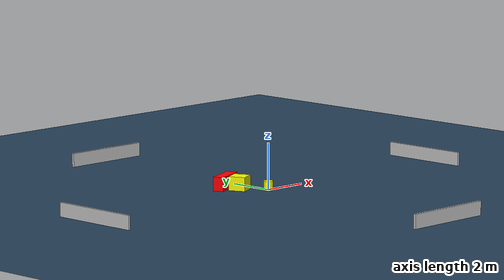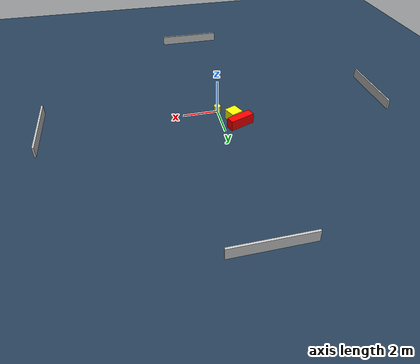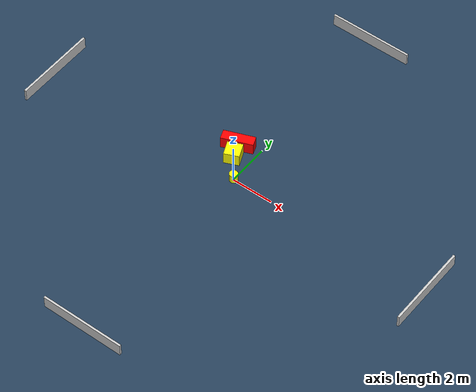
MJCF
<?xml version="1.0" ?>
<mujoco model="generated_environment">
  <option timestep="0.01" integrator="RK4" cone="elliptic"/>
  <default>
    <geom density="1"/>
  </default>
  <asset>
    <texture builtin="gradient" height="3072" name="skybox" rgb1="0.3 0.5 0.7" rgb2="0 0 0" type="skybox" width="512"/>
    <texture builtin="checker" height="300" name="groundplane" rgb1="0.2 0.3 0.4" rgb2="0.1 0.2 0.3" type="2d" width="300"/>
    <material name="groundplane" reflectance="0.2" texrepeat="5 5" texture="groundplane"/>
  </asset>
  <worldbody>
    <light dir="0 0 -1" directional="true" pos="0 0 1.5"/>
    <geom condim="3" friction="0.5 0.005 0.001" material="groundplane" name="floor" pos="0 0 0" size="0 0 0.05" type="plane"/>
    <body name="walls">
      <geom name="wall_1" condim="4" pos="-10.0 0.0 0.3" rgba="0.800000011920929 0.800000011920929 0.800000011920929 1.0" size="0.05 2.0 0.3" type="box"/>
      <geom name="wall_2" condim="4" pos="10.0 0.0 0.3" rgba="0.800000011920929 0.800000011920929 0.800000011920929 1.0" size="0.05 2.0 0.3" type="box"/>
      <geom name="wall_3" condim="4" pos="0.0 -10.0 0.3" rgba="0.800000011920929 0.800000011920929 0.800000011920929 1.0" size="2.0 0.05 0.3" type="box"/>
      <geom name="wall_4" condim="4" pos="0.0 10.0 0.3" rgba="0.800000011920929 0.800000011920929 0.800000011920929 1.0" size="2.0 0.05 0.3" type="box"/>
    </body>
    <body name="robot">
      <joint name="joint_x" type="slide" pos="0 0 0" axis="1 0 0"/>
      <joint name="joint_y" type="slide" pos="0 0 0" axis="0 1 0"/>
      <geom name="robot" type="cylinder" pos="0.0 0.0 0.2" size="0.2 0.2 0.0" mass="5.0" friction="1.0 0.005 0.0001" condim="4" rgba="1.0 1.0 0.0 1.0"/>
    </body>
    <body name="obstacle_1_movable">
      <geom name="obstacle_1_movable" condim="4" pos="-0.7534362622542996 0.9501934953996207 0.3" euler="0 0 113.59186323019372" friction="0.0 0.005 0.001" rgba="1.0 1.0 0.0 1.0" size="0.3591358748608607 0.357339033123551 0.3" type="box" mass="0.1"/>
      <joint type="free"/>
    </body>
    <body name="obstacle_2_static">
      <geom name="obstacle_2_static" condim="4" pos="-0.9813213026427547 1.5882400945609538 0.3" euler="0 0 21.134879789773116" friction="0.0 0.005 0.001" rgba="1.0 0.0 0.0 1.0" size="0.7416234511425532 0.23579709283279537 0.3" type="box"/>
    </body>
  </worldbody>
  <actuator>
    <motor name="actuator_x" joint="joint_x" gear="1" ctrlrange="-1 1"/>
    <motor name="actuator_y" joint="joint_y" gear="1" ctrlrange="-1 1"/>
  </actuator>
</mujoco>
